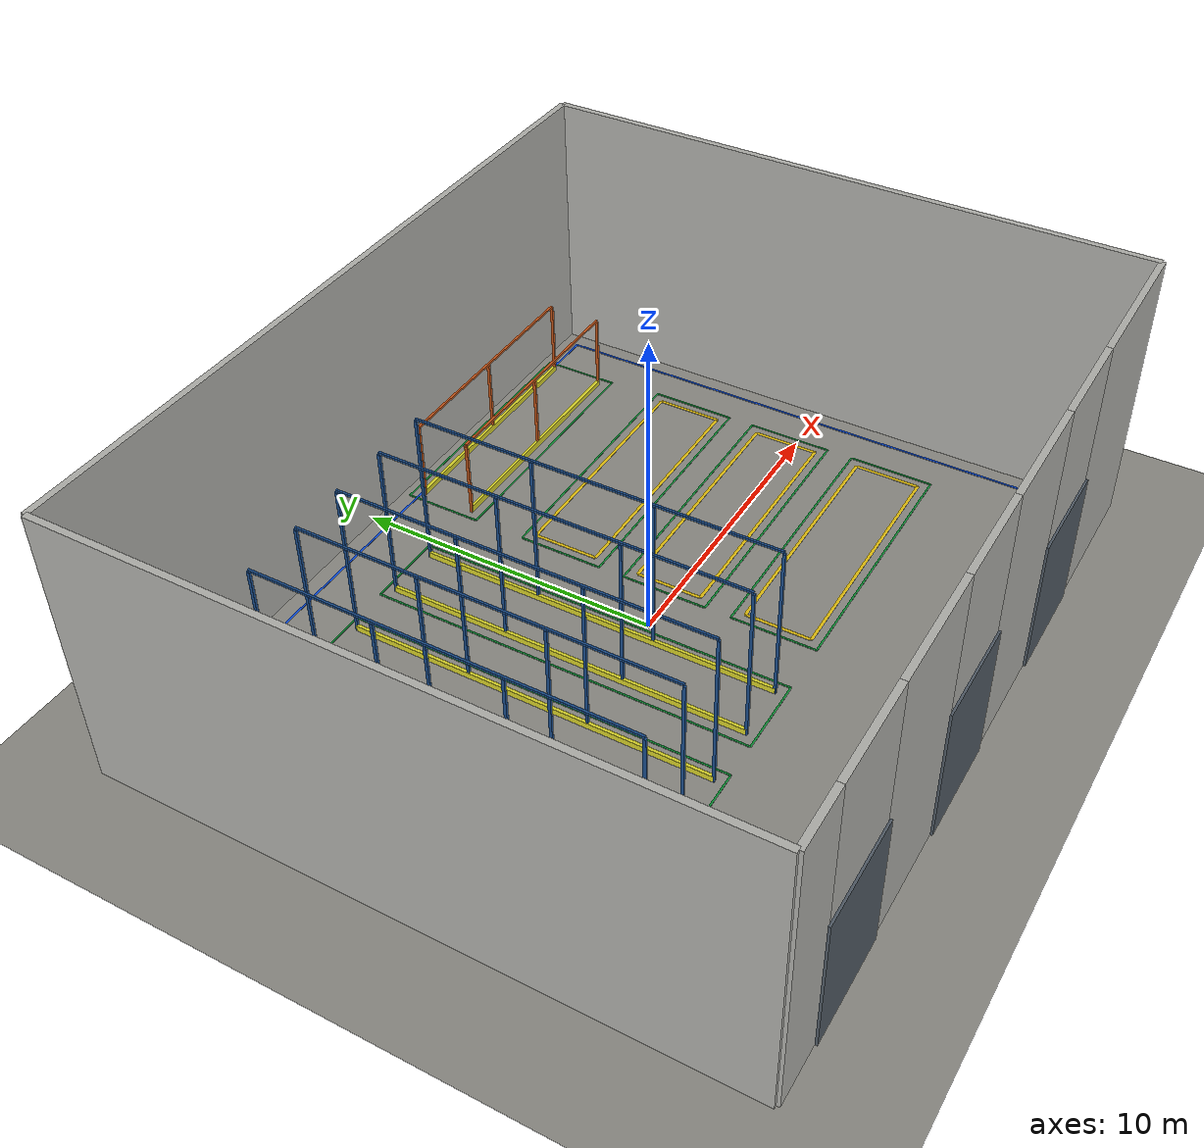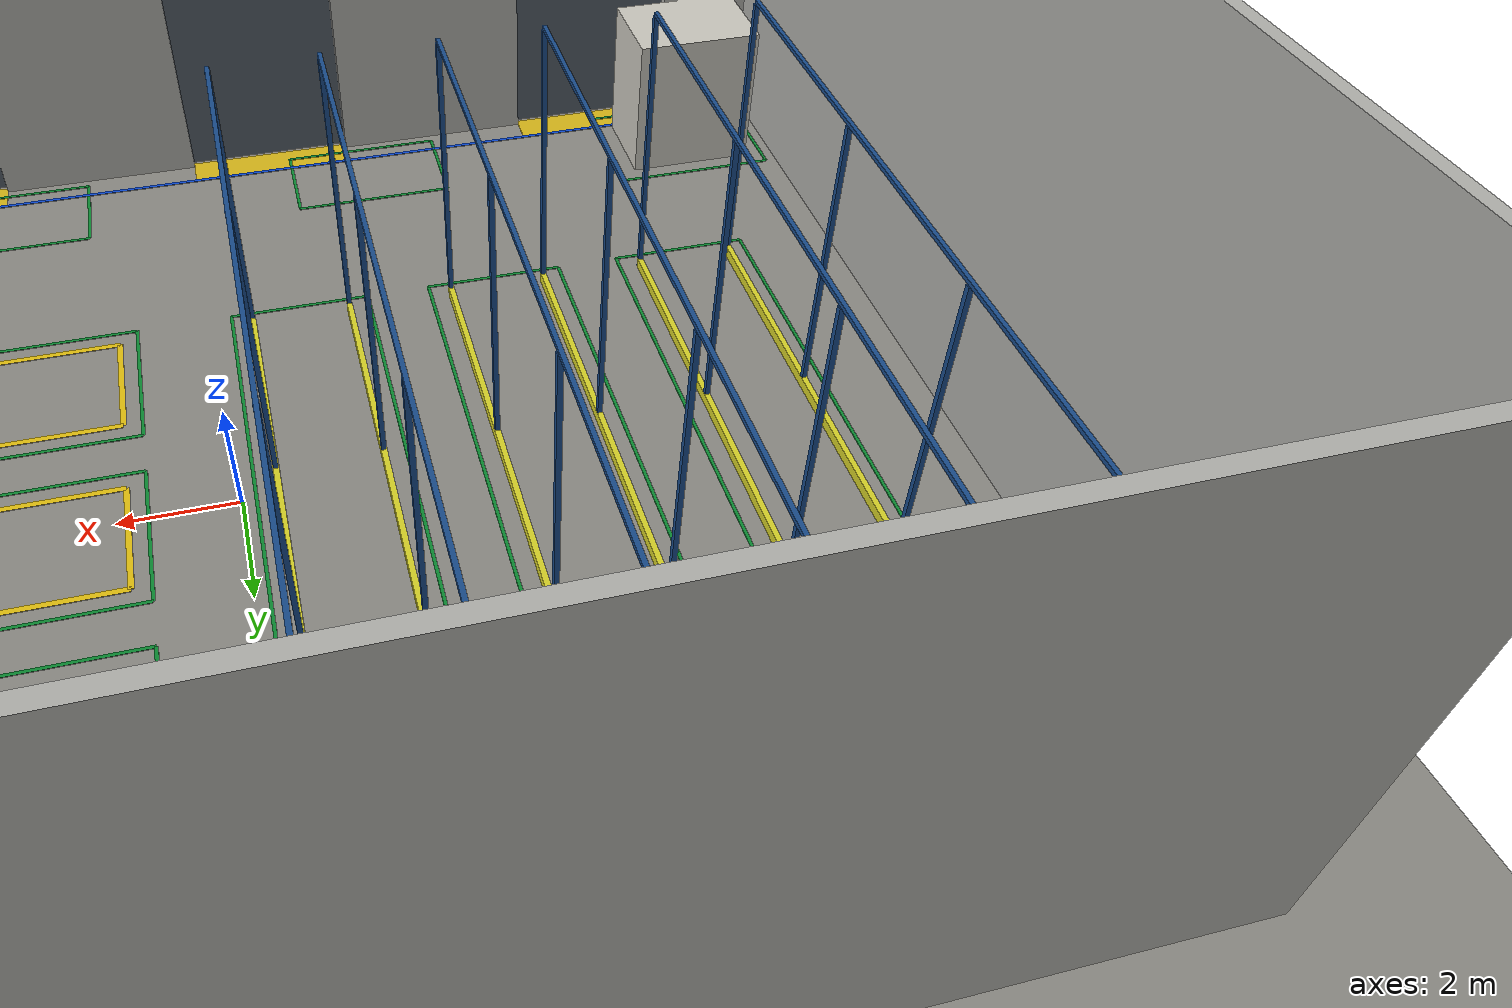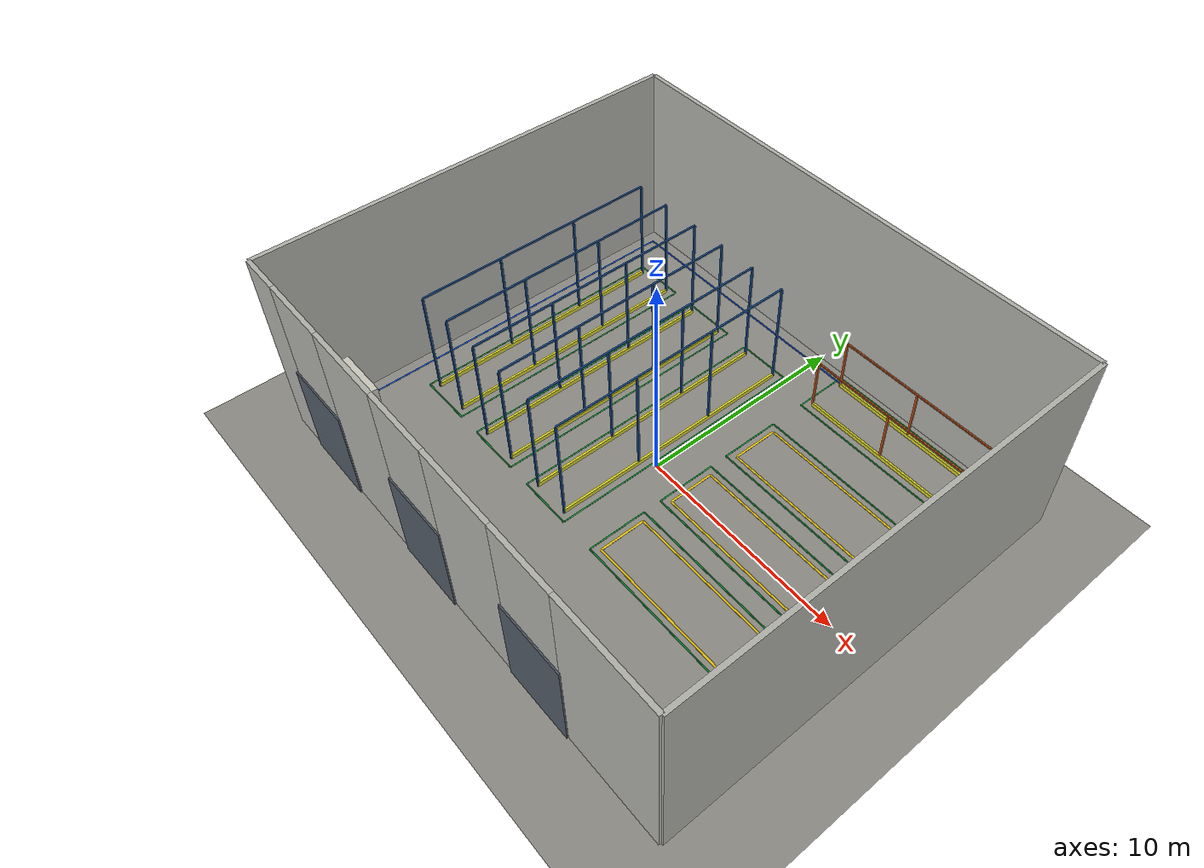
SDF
<sdf version="1.8">
 <world name="warehouse_v2">
  <physics name="default_physics" type="ode">
   <max_step_size>0.001</max_step_size>
   <real_time_factor>1.0</real_time_factor>
   <real_time_update_rate>1000</real_time_update_rate>
  </physics>
  <plugin name="gz::sim::systems::Physics" filename="gz-sim-physics-system"/>
  <plugin name="gz::sim::systems::UserCommands" filename="gz-sim-user-commands-system"/>
  <plugin name="gz::sim::systems::SceneBroadcaster" filename="gz-sim-scene-broadcaster-system"/>
  <plugin name="gz::sim::systems::Contact" filename="gz-sim-contact-system"/>
  <plugin name="gz::sim::systems::Sensors" filename="gz-sim-sensors-system">
   <render_engine>ogre2</render_engine>
  </plugin>
  <gravity>0 0 -9.81</gravity>
  <magnetic_field>6e-06 2.3e-05 -4.2e-05</magnetic_field>
  <atmosphere type="adiabatic"/>
  <scene>
   <ambient>0.42 0.42 0.44 1</ambient>
   <background>0.74 0.78 0.82 1</background>
   <shadows>true</shadows>
  </scene>
  <light type="directional" name="sun">
   <pose>0 0 12 0 0 0</pose>
   <diffuse>0.62 0.62 0.60 1</diffuse>
   <specular>0.08 0.08 0.08 1</specular>
   <direction>-0.35 0.55 -0.80</direction>
   <attenuation>
    <range>60</range>
    <constant>0.9</constant>
    <linear>0.01</linear>
    <quadratic>0.001</quadratic>
   </attenuation>
  </light>
  <light type="point" name="lamp_light_0">
   <pose>-8.90 -1.20 7.10 0 0 0</pose>
   <cast_shadows>false</cast_shadows>
   <diffuse>0.30 0.29 0.27 1</diffuse>
   <specular>0.03 0.03 0.03 1</specular>
   <attenuation>
    <range>16</range>
    <constant>1.10</constant>
    <linear>0.08</linear>
    <quadratic>0.010</quadratic>
   </attenuation>
  </light>
  <light type="point" name="lamp_light_1">
   <pose>-8.90 5.20 7.10 0 0 0</pose>
   <cast_shadows>false</cast_shadows>
   <diffuse>0.30 0.29 0.27 1</diffuse>
   <specular>0.03 0.03 0.03 1</specular>
   <attenuation>
    <range>16</range>
    <constant>1.10</constant>
    <linear>0.08</linear>
    <quadratic>0.010</quadratic>
   </attenuation>
  </light>
  <light type="point" name="lamp_light_2">
   <pose>-3.30 2.00 7.10 0 0 0</pose>
   <cast_shadows>false</cast_shadows>
   <diffuse>0.30 0.29 0.27 1</diffuse>
   <specular>0.03 0.03 0.03 1</specular>
   <attenuation>
    <range>16</range>
    <constant>1.10</constant>
    <linear>0.08</linear>
    <quadratic>0.010</quadratic>
   </attenuation>
  </light>
  <light type="point" name="lamp_light_3">
   <pose>2.90 -2.20 7.10 0 0 0</pose>
   <cast_shadows>false</cast_shadows>
   <diffuse>0.30 0.29 0.27 1</diffuse>
   <specular>0.03 0.03 0.03 1</specular>
   <attenuation>
    <range>16</range>
    <constant>1.10</constant>
    <linear>0.08</linear>
    <quadratic>0.010</quadratic>
   </attenuation>
  </light>
  <light type="point" name="lamp_light_4">
   <pose>2.90 5.60 7.10 0 0 0</pose>
   <cast_shadows>false</cast_shadows>
   <diffuse>0.30 0.29 0.27 1</diffuse>
   <specular>0.03 0.03 0.03 1</specular>
   <attenuation>
    <range>16</range>
    <constant>1.10</constant>
    <linear>0.08</linear>
    <quadratic>0.010</quadratic>
   </attenuation>
  </light>
  <light type="point" name="lamp_light_5">
   <pose>8.60 1.00 7.10 0 0 0</pose>
   <cast_shadows>false</cast_shadows>
   <diffuse>0.30 0.29 0.27 1</diffuse>
   <specular>0.03 0.03 0.03 1</specular>
   <attenuation>
    <range>16</range>
    <constant>1.10</constant>
    <linear>0.08</linear>
    <quadratic>0.010</quadratic>
   </attenuation>
  </light>
  <model name="ground_plane">
   <static>true</static>
   <link name="link">
    <collision name="collision">
     <geometry><plane><normal>0 0 1</normal><size>24.5 20.5</size></plane></geometry>
    </collision>
    <visual name="visual">
     <geometry><plane><normal>0 0 1</normal><size>24.5 20.5</size></plane></geometry>
     <material>
      <ambient>0.55 0.545 0.52 1</ambient>
      <diffuse>0.55 0.545 0.52 1</diffuse>
      <specular>0.04 0.04 0.04 1</specular>
     </material>
    </visual>
   </link>
  </model>
  <model name="warehouse_shell">
   <static>true</static>
   <link name="wall_east">
    <pose>12.000 0.000 4.500 0 0 0</pose>
    <collision name="collision"><geometry><box><size>0.200 20.000 9.000</size></box></geometry></collision>
    <sensor name="contact" type="contact">
     <contact><collision>collision</collision></contact>
     <update_rate>60</update_rate>
    </sensor>
    <visual name="visual">
     <geometry><box><size>0.200 20.000 9.000</size></box></geometry>
     <material><ambient>0.70 0.70 0.68 1</ambient><diffuse>0.70 0.70 0.68 1</diffuse></material>
    </visual>
   </link>
   <link name="wall_west">
    <pose>-12.000 0.000 4.500 0 0 0</pose>
    <collision name="collision"><geometry><box><size>0.200 20.000 9.000</size></box></geometry></collision>
    <sensor name="contact" type="contact">
     <contact><collision>collision</collision></contact>
     <update_rate>60</update_rate>
    </sensor>
    <visual name="visual">
     <geometry><box><size>0.200 20.000 9.000</size></box></geometry>
     <material><ambient>0.70 0.70 0.68 1</ambient><diffuse>0.70 0.70 0.68 1</diffuse></material>
    </visual>
   </link>
   <link name="wall_north">
    <pose>0.000 10.000 4.500 0 0 0</pose>
    <collision name="collision"><geometry><box><size>24.000 0.200 9.000</size></box></geometry></collision>
    <sensor name="contact" type="contact">
     <contact><collision>collision</collision></contact>
     <update_rate>60</update_rate>
    </sensor>
    <visual name="visual">
     <geometry><box><size>24.000 0.200 9.000</size></box></geometry>
     <material><ambient>0.70 0.70 0.68 1</ambient><diffuse>0.70 0.70 0.68 1</diffuse></material>
    </visual>
   </link>
   <link name="wall_south_0">
    <pose>-11.050 -10.000 4.500 0 0 0</pose>
    <collision name="collision"><geometry><box><size>1.900 0.200 9.000</size></box></geometry></collision>
    <sensor name="contact" type="contact">
     <contact><collision>collision</collision></contact>
     <update_rate>60</update_rate>
    </sensor>
    <visual name="visual">
     <geometry><box><size>1.900 0.200 9.000</size></box></geometry>
     <material><ambient>0.70 0.70 0.68 1</ambient><diffuse>0.70 0.70 0.68 1</diffuse></material>
    </visual>
   </link>
   <link name="wall_south_1">
    <pose>-5.000 -10.000 4.500 0 0 0</pose>
    <collision name="collision"><geometry><box><size>3.800 0.200 9.000</size></box></geometry></collision>
    <sensor name="contact" type="contact">
     <contact><collision>collision</collision></contact>
     <update_rate>60</update_rate>
    </sensor>
    <visual name="visual">
     <geometry><box><size>3.800 0.200 9.000</size></box></geometry>
     <material><ambient>0.70 0.70 0.68 1</ambient><diffuse>0.70 0.70 0.68 1</diffuse></material>
    </visual>
   </link>
   <link name="wall_south_2">
    <pose>2.000 -10.000 4.500 0 0 0</pose>
    <collision name="collision"><geometry><box><size>3.800 0.200 9.000</size></box></geometry></collision>
    <sensor name="contact" type="contact">
     <contact><collision>collision</collision></contact>
     <update_rate>60</update_rate>
    </sensor>
    <visual name="visual">
     <geometry><box><size>3.800 0.200 9.000</size></box></geometry>
     <material><ambient>0.70 0.70 0.68 1</ambient><diffuse>0.70 0.70 0.68 1</diffuse></material>
    </visual>
   </link>
   <link name="wall_south_3">
    <pose>9.550 -10.000 4.500 0 0 0</pose>
    <collision name="collision"><geometry><box><size>4.900 0.200 9.000</size></box></geometry></collision>
    <sensor name="contact" type="contact">
     <contact><collision>collision</collision></contact>
     <update_rate>60</update_rate>
    </sensor>
    <visual name="visual">
     <geometry><box><size>4.900 0.200 9.000</size></box></geometry>
     <material><ambient>0.70 0.70 0.68 1</ambient><diffuse>0.70 0.70 0.68 1</diffuse></material>
    </visual>
   </link>
   <link name="door_head_0">
    <pose>-8.500 -10.000 6.750 0 0 0</pose>
    <collision name="collision"><geometry><box><size>3.200 0.200 4.500</size></box></geometry></collision>
    <sensor name="contact" type="contact">
     <contact><collision>collision</collision></contact>
     <update_rate>60</update_rate>
    </sensor>
    <visual name="visual">
     <geometry><box><size>3.200 0.200 4.500</size></box></geometry>
     <material><ambient>0.70 0.70 0.68 1</ambient><diffuse>0.70 0.70 0.68 1</diffuse></material>
    </visual>
   </link>
   <link name="door_frame_0">
    <pose>-8.500 -10.130 2.250 0 0 0</pose>
    <visual name="visual">
     <geometry><box><size>3.360 0.080 4.500</size></box></geometry>
     <material><ambient>0.32 0.36 0.40 1</ambient><diffuse>0.32 0.36 0.40 1</diffuse></material>
    </visual>
   </link>
   <link name="door_sill_0">
    <pose>-8.500 -9.700 0.008 0 0 0</pose>
    <visual name="visual">
     <geometry><box><size>3.200 0.600 0.014</size></box></geometry>
     <material><ambient>0.85 0.72 0.10 1</ambient><diffuse>0.85 0.72 0.10 1</diffuse></material>
    </visual>
   </link>
   <link name="door_head_1">
    <pose>-1.500 -10.000 6.750 0 0 0</pose>
    <collision name="collision"><geometry><box><size>3.200 0.200 4.500</size></box></geometry></collision>
    <sensor name="contact" type="contact">
     <contact><collision>collision</collision></contact>
     <update_rate>60</update_rate>
    </sensor>
    <visual name="visual">
     <geometry><box><size>3.200 0.200 4.500</size></box></geometry>
     <material><ambient>0.70 0.70 0.68 1</ambient><diffuse>0.70 0.70 0.68 1</diffuse></material>
    </visual>
   </link>
   <link name="door_frame_1">
    <pose>-1.500 -10.130 2.250 0 0 0</pose>
    <visual name="visual">
     <geometry><box><size>3.360 0.080 4.500</size></box></geometry>
     <material><ambient>0.32 0.36 0.40 1</ambient><diffuse>0.32 0.36 0.40 1</diffuse></material>
    </visual>
   </link>
   <link name="door_sill_1">
    <pose>-1.500 -9.700 0.008 0 0 0</pose>
    <visual name="visual">
     <geometry><box><size>3.200 0.600 0.014</size></box></geometry>
     <material><ambient>0.85 0.72 0.10 1</ambient><diffuse>0.85 0.72 0.10 1</diffuse></material>
    </visual>
   </link>
   <link name="door_head_2">
    <pose>5.500 -10.000 6.750 0 0 0</pose>
    <collision name="collision"><geometry><box><size>3.200 0.200 4.500</size></box></geometry></collision>
    <sensor name="contact" type="contact">
     <contact><collision>collision</collision></contact>
     <update_rate>60</update_rate>
    </sensor>
    <visual name="visual">
     <geometry><box><size>3.200 0.200 4.500</size></box></geometry>
     <material><ambient>0.70 0.70 0.68 1</ambient><diffuse>0.70 0.70 0.68 1</diffuse></material>
    </visual>
   </link>
   <link name="door_frame_2">
    <pose>5.500 -10.130 2.250 0 0 0</pose>
    <visual name="visual">
     <geometry><box><size>3.360 0.080 4.500</size></box></geometry>
     <material><ambient>0.32 0.36 0.40 1</ambient><diffuse>0.32 0.36 0.40 1</diffuse></material>
    </visual>
   </link>
   <link name="door_sill_2">
    <pose>5.500 -9.700 0.008 0 0 0</pose>
    <visual name="visual">
     <geometry><box><size>3.200 0.600 0.014</size></box></geometry>
     <material><ambient>0.85 0.72 0.10 1</ambient><diffuse>0.85 0.72 0.10 1</diffuse></material>
    </visual>
   </link>
  </model>
  <model name="warehouse_v2_occluders">
   <static>true</static>
   <link name="obs_A1b1w">
    <pose>-9.410 -2.442 2.613 0 0 0</pose>
    <collision name="collision"><geometry><box><size>0.880 3.917 5.226</size></box></geometry></collision>
    <sensor name="contact" type="contact">
     <contact><collision>collision</collision></contact>
     <update_rate>60</update_rate>
    </sensor>
   </link>
   <link name="obs_A1b1e">
    <pose>-8.390 -2.442 2.613 0 0 0</pose>
    <collision name="collision"><geometry><box><size>0.880 3.917 5.226</size></box></geometry></collision>
    <sensor name="contact" type="contact">
     <contact><collision>collision</collision></contact>
     <update_rate>60</update_rate>
    </sensor>
   </link>
   <link name="obs_A1b2w">
    <pose>-9.410 1.475 2.613 0 0 0</pose>
    <collision name="collision"><geometry><box><size>0.880 3.917 5.226</size></box></geometry></collision>
    <sensor name="contact" type="contact">
     <contact><collision>collision</collision></contact>
     <update_rate>60</update_rate>
    </sensor>
   </link>
   <link name="obs_A1b2e">
    <pose>-8.390 1.475 2.613 0 0 0</pose>
    <collision name="collision"><geometry><box><size>0.880 3.917 5.226</size></box></geometry></collision>
    <sensor name="contact" type="contact">
     <contact><collision>collision</collision></contact>
     <update_rate>60</update_rate>
    </sensor>
   </link>
   <link name="obs_A1b3w">
    <pose>-9.410 5.393 2.613 0 0 0</pose>
    <collision name="collision"><geometry><box><size>0.880 3.917 5.226</size></box></geometry></collision>
    <sensor name="contact" type="contact">
     <contact><collision>collision</collision></contact>
     <update_rate>60</update_rate>
    </sensor>
   </link>
   <link name="obs_A1b3e">
    <pose>-8.390 5.393 2.613 0 0 0</pose>
    <collision name="collision"><geometry><box><size>0.880 3.917 5.226</size></box></geometry></collision>
    <sensor name="contact" type="contact">
     <contact><collision>collision</collision></contact>
     <update_rate>60</update_rate>
    </sensor>
   </link>
   <link name="obs_A2b1w">
    <pose>-5.710 -2.442 2.613 0 0 0</pose>
    <collision name="collision"><geometry><box><size>0.880 3.917 5.226</size></box></geometry></collision>
    <sensor name="contact" type="contact">
     <contact><collision>collision</collision></contact>
     <update_rate>60</update_rate>
    </sensor>
   </link>
   <link name="obs_A2b1e">
    <pose>-4.690 -2.442 2.613 0 0 0</pose>
    <collision name="collision"><geometry><box><size>0.880 3.917 5.226</size></box></geometry></collision>
    <sensor name="contact" type="contact">
     <contact><collision>collision</collision></contact>
     <update_rate>60</update_rate>
    </sensor>
   </link>
   <link name="obs_A2b2w">
    <pose>-5.710 1.475 1.306 0 0 0</pose>
    <collision name="collision"><geometry><box><size>0.880 3.917 2.613</size></box></geometry></collision>
    <sensor name="contact" type="contact">
     <contact><collision>collision</collision></contact>
     <update_rate>60</update_rate>
    </sensor>
   </link>
   <link name="obs_A2b2e">
    <pose>-4.690 1.475 1.306 0 0 0</pose>
    <collision name="collision"><geometry><box><size>0.880 3.917 2.613</size></box></geometry></collision>
    <sensor name="contact" type="contact">
     <contact><collision>collision</collision></contact>
     <update_rate>60</update_rate>
    </sensor>
   </link>
   <link name="obs_A2b3w">
    <pose>-5.710 5.393 2.613 0 0 0</pose>
    <collision name="collision"><geometry><box><size>0.880 3.917 5.226</size></box></geometry></collision>
    <sensor name="contact" type="contact">
     <contact><collision>collision</collision></contact>
     <update_rate>60</update_rate>
    </sensor>
   </link>
   <link name="obs_A2b3e">
    <pose>-4.690 5.393 2.613 0 0 0</pose>
    <collision name="collision"><geometry><box><size>0.880 3.917 5.226</size></box></geometry></collision>
    <sensor name="contact" type="contact">
     <contact><collision>collision</collision></contact>
     <update_rate>60</update_rate>
    </sensor>
   </link>
   <link name="obs_A3b1w">
    <pose>-2.010 -2.442 2.613 0 0 0</pose>
    <collision name="collision"><geometry><box><size>0.880 3.917 5.226</size></box></geometry></collision>
    <sensor name="contact" type="contact">
     <contact><collision>collision</collision></contact>
     <update_rate>60</update_rate>
    </sensor>
   </link>
   <link name="obs_A3b1e">
    <pose>-0.990 -2.442 2.613 0 0 0</pose>
    <collision name="collision"><geometry><box><size>0.880 3.917 5.226</size></box></geometry></collision>
    <sensor name="contact" type="contact">
     <contact><collision>collision</collision></contact>
     <update_rate>60</update_rate>
    </sensor>
   </link>
   <link name="obs_A3b2w">
    <pose>-2.010 1.475 2.613 0 0 0</pose>
    <collision name="collision"><geometry><box><size>0.880 3.917 5.226</size></box></geometry></collision>
    <sensor name="contact" type="contact">
     <contact><collision>collision</collision></contact>
     <update_rate>60</update_rate>
    </sensor>
   </link>
   <link name="obs_A3b2e">
    <pose>-0.990 1.475 2.613 0 0 0</pose>
    <collision name="collision"><geometry><box><size>0.880 3.917 5.226</size></box></geometry></collision>
    <sensor name="contact" type="contact">
     <contact><collision>collision</collision></contact>
     <update_rate>60</update_rate>
    </sensor>
   </link>
   <link name="obs_A3b3w">
    <pose>-2.010 5.393 1.306 0 0 0</pose>
    <collision name="collision"><geometry><box><size>0.880 3.917 2.613</size></box></geometry></collision>
    <sensor name="contact" type="contact">
     <contact><collision>collision</collision></contact>
     <update_rate>60</update_rate>
    </sensor>
   </link>
   <link name="obs_A3b3e">
    <pose>-0.990 5.393 1.306 0 0 0</pose>
    <collision name="collision"><geometry><box><size>0.880 3.917 2.613</size></box></geometry></collision>
    <sensor name="contact" type="contact">
     <contact><collision>collision</collision></contact>
     <update_rate>60</update_rate>
    </sensor>
   </link>
   <link name="obs_B1b1s">
    <pose>3.758 7.840 1.306 0 0 0</pose>
    <collision name="collision"><geometry><box><size>3.917 0.880 2.613</size></box></geometry></collision>
    <sensor name="contact" type="contact">
     <contact><collision>collision</collision></contact>
     <update_rate>60</update_rate>
    </sensor>
   </link>
   <link name="obs_B1b1n">
    <pose>3.758 8.860 1.306 0 0 0</pose>
    <collision name="collision"><geometry><box><size>3.917 0.880 2.613</size></box></geometry></collision>
    <sensor name="contact" type="contact">
     <contact><collision>collision</collision></contact>
     <update_rate>60</update_rate>
    </sensor>
   </link>
   <link name="obs_B1b2s">
    <pose>7.675 7.840 1.306 0 0 0</pose>
    <collision name="collision"><geometry><box><size>3.917 0.880 2.613</size></box></geometry></collision>
    <sensor name="contact" type="contact">
     <contact><collision>collision</collision></contact>
     <update_rate>60</update_rate>
    </sensor>
   </link>
   <link name="obs_B1b2n">
    <pose>7.675 8.860 1.306 0 0 0</pose>
    <collision name="collision"><geometry><box><size>3.917 0.880 2.613</size></box></geometry></collision>
    <sensor name="contact" type="contact">
     <contact><collision>collision</collision></contact>
     <update_rate>60</update_rate>
    </sensor>
   </link>
   <link name="obs_Cs_p0">
    <pose>3.182 -3.325 0.529 0 0 0</pose>
    <collision name="collision"><geometry><box><size>2.146 1.983 1.058</size></box></geometry></collision>
    <sensor name="contact" type="contact">
     <contact><collision>collision</collision></contact>
     <update_rate>60</update_rate>
    </sensor>
   </link>
   <link name="obs_Cs_p1">
    <pose>5.825 -3.325 1.058 0 0 0</pose>
    <collision name="collision"><geometry><box><size>2.146 1.983 2.115</size></box></geometry></collision>
    <sensor name="contact" type="contact">
     <contact><collision>collision</collision></contact>
     <update_rate>60</update_rate>
    </sensor>
   </link>
   <link name="obs_Cs_p2">
    <pose>8.468 -3.325 1.587 0 0 0</pose>
    <collision name="collision"><geometry><box><size>2.146 1.983 3.173</size></box></geometry></collision>
    <sensor name="contact" type="contact">
     <contact><collision>collision</collision></contact>
     <update_rate>60</update_rate>
    </sensor>
   </link>
   <link name="obs_Cm_p0">
    <pose>3.182 0.325 1.058 0 0 0</pose>
    <collision name="collision"><geometry><box><size>2.146 1.983 2.115</size></box></geometry></collision>
    <sensor name="contact" type="contact">
     <contact><collision>collision</collision></contact>
     <update_rate>60</update_rate>
    </sensor>
   </link>
   <link name="obs_Cm_p1">
    <pose>5.825 0.325 1.587 0 0 0</pose>
    <collision name="collision"><geometry><box><size>2.146 1.983 3.173</size></box></geometry></collision>
    <sensor name="contact" type="contact">
     <contact><collision>collision</collision></contact>
     <update_rate>60</update_rate>
    </sensor>
   </link>
   <link name="obs_Cm_p2">
    <pose>8.468 0.325 0.529 0 0 0</pose>
    <collision name="collision"><geometry><box><size>2.146 1.983 1.058</size></box></geometry></collision>
    <sensor name="contact" type="contact">
     <contact><collision>collision</collision></contact>
     <update_rate>60</update_rate>
    </sensor>
   </link>
   <link name="obs_Cn_p0">
    <pose>3.182 3.975 1.587 0 0 0</pose>
    <collision name="collision"><geometry><box><size>2.146 1.983 3.173</size></box></geometry></collision>
    <sensor name="contact" type="contact">
     <contact><collision>collision</collision></contact>
     <update_rate>60</update_rate>
    </sensor>
   </link>
   <link name="obs_Cn_p1">
    <pose>5.825 3.975 0.529 0 0 0</pose>
    <collision name="collision"><geometry><box><size>2.146 1.983 1.058</size></box></geometry></collision>
    <sensor name="contact" type="contact">
     <contact><collision>collision</collision></contact>
     <update_rate>60</update_rate>
    </sensor>
   </link>
   <link name="obs_Cn_p2">
    <pose>8.468 3.975 1.058 0 0 0</pose>
    <collision name="collision"><geometry><box><size>2.146 1.983 2.115</size></box></geometry></collision>
    <sensor name="contact" type="contact">
     <contact><collision>collision</collision></contact>
     <update_rate>60</update_rate>
    </sensor>
   </link>
   <link name="dock_office">
    <pose>-10.100 -8.450 1.400 0 0 0</pose>
    <collision name="collision"><geometry><box><size>2.440 1.740 2.800</size></box></geometry></collision>
    <sensor name="contact" type="contact">
     <contact><collision>collision</collision></contact>
     <update_rate>60</update_rate>
    </sensor>
    <visual name="visual">
     <geometry><box><size>2.440 1.740 2.800</size></box></geometry>
     <material><ambient>0.80 0.79 0.75 1</ambient><diffuse>0.80 0.79 0.75 1</diffuse></material>
    </visual>
   </link>
   <link name="obs_STAGE_MID0">
    <pose>-3.900 -8.750 0.860 0 0 0</pose>
    <collision name="collision"><geometry><box><size>0.950 1.000 1.720</size></box></geometry></collision>
    <sensor name="contact" type="contact">
     <contact><collision>collision</collision></contact>
     <update_rate>60</update_rate>
    </sensor>
   </link>
   <link name="obs_STAGE_MID1">
    <pose>-2.850 -8.750 0.860 0 0 0</pose>
    <collision name="collision"><geometry><box><size>0.950 1.000 1.720</size></box></geometry></collision>
    <sensor name="contact" type="contact">
     <contact><collision>collision</collision></contact>
     <update_rate>60</update_rate>
    </sensor>
   </link>
   <link name="obs_STAGE_E0">
    <pose>3.300 -8.750 0.530 0 0 0</pose>
    <collision name="collision"><geometry><box><size>0.950 1.000 1.060</size></box></geometry></collision>
    <sensor name="contact" type="contact">
     <contact><collision>collision</collision></contact>
     <update_rate>60</update_rate>
    </sensor>
   </link>
   <link name="obs_STAGE_E1">
    <pose>4.350 -8.750 0.530 0 0 0</pose>
    <collision name="collision"><geometry><box><size>0.950 1.000 1.060</size></box></geometry></collision>
    <sensor name="contact" type="contact">
     <contact><collision>collision</collision></contact>
     <update_rate>60</update_rate>
    </sensor>
   </link>
  </model>
  <model name="warehouse_v2_rack_frames">
   <static>true</static>
   <link name="post_A1_0n">
    <pose>-9.790 -4.400 2.613 0 0 0</pose>
    <visual name="visual">
     <geometry><box><size>0.085 0.085 5.226</size></box></geometry>
     <material><ambient>0.10 0.30 0.55 1</ambient><diffuse>0.10 0.30 0.55 1</diffuse></material>
    </visual>
   </link>
   <link name="post_A1_0s">
    <pose>-8.010 -4.400 2.613 0 0 0</pose>
    <visual name="visual">
     <geometry><box><size>0.085 0.085 5.226</size></box></geometry>
     <material><ambient>0.10 0.30 0.55 1</ambient><diffuse>0.10 0.30 0.55 1</diffuse></material>
    </visual>
   </link>
   <link name="post_A1_1n">
    <pose>-9.790 -0.483 2.613 0 0 0</pose>
    <visual name="visual">
     <geometry><box><size>0.085 0.085 5.226</size></box></geometry>
     <material><ambient>0.10 0.30 0.55 1</ambient><diffuse>0.10 0.30 0.55 1</diffuse></material>
    </visual>
   </link>
   <link name="post_A1_1s">
    <pose>-8.010 -0.483 2.613 0 0 0</pose>
    <visual name="visual">
     <geometry><box><size>0.085 0.085 5.226</size></box></geometry>
     <material><ambient>0.10 0.30 0.55 1</ambient><diffuse>0.10 0.30 0.55 1</diffuse></material>
    </visual>
   </link>
   <link name="post_A1_2n">
    <pose>-9.790 3.434 2.613 0 0 0</pose>
    <visual name="visual">
     <geometry><box><size>0.085 0.085 5.226</size></box></geometry>
     <material><ambient>0.10 0.30 0.55 1</ambient><diffuse>0.10 0.30 0.55 1</diffuse></material>
    </visual>
   </link>
   <link name="post_A1_2s">
    <pose>-8.010 3.434 2.613 0 0 0</pose>
    <visual name="visual">
     <geometry><box><size>0.085 0.085 5.226</size></box></geometry>
     <material><ambient>0.10 0.30 0.55 1</ambient><diffuse>0.10 0.30 0.55 1</diffuse></material>
    </visual>
   </link>
   <link name="post_A1_3n">
    <pose>-9.790 7.351 2.613 0 0 0</pose>
    <visual name="visual">
     <geometry><box><size>0.085 0.085 5.226</size></box></geometry>
     <material><ambient>0.10 0.30 0.55 1</ambient><diffuse>0.10 0.30 0.55 1</diffuse></material>
    </visual>
   </link>
   <link name="post_A1_3s">
    <pose>-8.010 7.351 2.613 0 0 0</pose>
    <visual name="visual">
     <geometry><box><size>0.085 0.085 5.226</size></box></geometry>
     <material><ambient>0.10 0.30 0.55 1</ambient><diffuse>0.10 0.30 0.55 1</diffuse></material>
    </visual>
   </link>
   <link name="rail_A1_n">
    <pose>-9.790 1.475 5.276 0 0 0</pose>
    <visual name="visual">
     <geometry><box><size>0.070 11.751 0.070</size></box></geometry>
     <material><ambient>0.10 0.30 0.55 1</ambient><diffuse>0.10 0.30 0.55 1</diffuse></material>
    </visual>
   </link>
   <link name="rail_A1_s">
    <pose>-8.010 1.475 5.276 0 0 0</pose>
    <visual name="visual">
     <geometry><box><size>0.070 11.751 0.070</size></box></geometry>
     <material><ambient>0.10 0.30 0.55 1</ambient><diffuse>0.10 0.30 0.55 1</diffuse></material>
    </visual>
   </link>
   <link name="kick_A1_n">
    <pose>-9.790 1.475 0.100 0 0 0</pose>
    <visual name="visual">
     <geometry><box><size>0.100 11.751 0.200</size></box></geometry>
     <material><ambient>0.85 0.83 0.16 1</ambient><diffuse>0.85 0.83 0.16 1</diffuse></material>
    </visual>
   </link>
   <link name="kick_A1_s">
    <pose>-8.010 1.475 0.100 0 0 0</pose>
    <visual name="visual">
     <geometry><box><size>0.100 11.751 0.200</size></box></geometry>
     <material><ambient>0.85 0.83 0.16 1</ambient><diffuse>0.85 0.83 0.16 1</diffuse></material>
    </visual>
   </link>
   <link name="post_A2_0n">
    <pose>-6.090 -4.400 2.613 0 0 0</pose>
    <visual name="visual">
     <geometry><box><size>0.085 0.085 5.226</size></box></geometry>
     <material><ambient>0.10 0.30 0.55 1</ambient><diffuse>0.10 0.30 0.55 1</diffuse></material>
    </visual>
   </link>
   <link name="post_A2_0s">
    <pose>-4.310 -4.400 2.613 0 0 0</pose>
    <visual name="visual">
     <geometry><box><size>0.085 0.085 5.226</size></box></geometry>
     <material><ambient>0.10 0.30 0.55 1</ambient><diffuse>0.10 0.30 0.55 1</diffuse></material>
    </visual>
   </link>
   <link name="post_A2_1n">
    <pose>-6.090 -0.483 2.613 0 0 0</pose>
    <visual name="visual">
     <geometry><box><size>0.085 0.085 5.226</size></box></geometry>
     <material><ambient>0.10 0.30 0.55 1</ambient><diffuse>0.10 0.30 0.55 1</diffuse></material>
    </visual>
   </link>
   <link name="post_A2_1s">
    <pose>-4.310 -0.483 2.613 0 0 0</pose>
    <visual name="visual">
     <geometry><box><size>0.085 0.085 5.226</size></box></geometry>
     <material><ambient>0.10 0.30 0.55 1</ambient><diffuse>0.10 0.30 0.55 1</diffuse></material>
    </visual>
   </link>
   <link name="post_A2_2n">
    <pose>-6.090 3.434 2.613 0 0 0</pose>
    <visual name="visual">
     <geometry><box><size>0.085 0.085 5.226</size></box></geometry>
     <material><ambient>0.10 0.30 0.55 1</ambient><diffuse>0.10 0.30 0.55 1</diffuse></material>
    </visual>
   </link>
   <link name="post_A2_2s">
    <pose>-4.310 3.434 2.613 0 0 0</pose>
    <visual name="visual">
     <geometry><box><size>0.085 0.085 5.226</size></box></geometry>
     <material><ambient>0.10 0.30 0.55 1</ambient><diffuse>0.10 0.30 0.55 1</diffuse></material>
    </visual>
   </link>
   <link name="post_A2_3n">
    <pose>-6.090 7.351 2.613 0 0 0</pose>
    <visual name="visual">
     <geometry><box><size>0.085 0.085 5.226</size></box></geometry>
     <material><ambient>0.10 0.30 0.55 1</ambient><diffuse>0.10 0.30 0.55 1</diffuse></material>
    </visual>
   </link>
   <link name="post_A2_3s">
    <pose>-4.310 7.351 2.613 0 0 0</pose>
    <visual name="visual">
     <geometry><box><size>0.085 0.085 5.226</size></box></geometry>
     <material><ambient>0.10 0.30 0.55 1</ambient><diffuse>0.10 0.30 0.55 1</diffuse></material>
    </visual>
   </link>
   <link name="rail_A2_n">
    <pose>-6.090 1.475 5.276 0 0 0</pose>
    <visual name="visual">
     <geometry><box><size>0.070 11.751 0.070</size></box></geometry>
     <material><ambient>0.10 0.30 0.55 1</ambient><diffuse>0.10 0.30 0.55 1</diffuse></material>
    </visual>
   </link>
   <link name="rail_A2_s">
    <pose>-4.310 1.475 5.276 0 0 0</pose>
    <visual name="visual">
     <geometry><box><size>0.070 11.751 0.070</size></box></geometry>
     <material><ambient>0.10 0.30 0.55 1</ambient><diffuse>0.10 0.30 0.55 1</diffuse></material>
    </visual>
   </link>
   <link name="kick_A2_n">
    <pose>-6.090 1.475 0.100 0 0 0</pose>
    <visual name="visual">
     <geometry><box><size>0.100 11.751 0.200</size></box></geometry>
     <material><ambient>0.85 0.83 0.16 1</ambient><diffuse>0.85 0.83 0.16 1</diffuse></material>
    </visual>
   </link>
   <link name="kick_A2_s">
    <pose>-4.310 1.475 0.100 0 0 0</pose>
    <visual name="visual">
     <geometry><box><size>0.100 11.751 0.200</size></box></geometry>
     <material><ambient>0.85 0.83 0.16 1</ambient><diffuse>0.85 0.83 0.16 1</diffuse></material>
    </visual>
   </link>
   <link name="post_A3_0n">
    <pose>-2.390 -4.400 2.613 0 0 0</pose>
    <visual name="visual">
     <geometry><box><size>0.085 0.085 5.226</size></box></geometry>
     <material><ambient>0.10 0.30 0.55 1</ambient><diffuse>0.10 0.30 0.55 1</diffuse></material>
    </visual>
   </link>
   <link name="post_A3_0s">
    <pose>-0.610 -4.400 2.613 0 0 0</pose>
    <visual name="visual">
     <geometry><box><size>0.085 0.085 5.226</size></box></geometry>
     <material><ambient>0.10 0.30 0.55 1</ambient><diffuse>0.10 0.30 0.55 1</diffuse></material>
    </visual>
   </link>
   <link name="post_A3_1n">
    <pose>-2.390 -0.483 2.613 0 0 0</pose>
    <visual name="visual">
     <geometry><box><size>0.085 0.085 5.226</size></box></geometry>
     <material><ambient>0.10 0.30 0.55 1</ambient><diffuse>0.10 0.30 0.55 1</diffuse></material>
    </visual>
   </link>
   <link name="post_A3_1s">
    <pose>-0.610 -0.483 2.613 0 0 0</pose>
    <visual name="visual">
     <geometry><box><size>0.085 0.085 5.226</size></box></geometry>
     <material><ambient>0.10 0.30 0.55 1</ambient><diffuse>0.10 0.30 0.55 1</diffuse></material>
    </visual>
   </link>
   <link name="post_A3_2n">
    <pose>-2.390 3.434 2.613 0 0 0</pose>
    <visual name="visual">
     <geometry><box><size>0.085 0.085 5.226</size></box></geometry>
     <material><ambient>0.10 0.30 0.55 1</ambient><diffuse>0.10 0.30 0.55 1</diffuse></material>
    </visual>
   </link>
   <link name="post_A3_2s">
    <pose>-0.610 3.434 2.613 0 0 0</pose>
    <visual name="visual">
     <geometry><box><size>0.085 0.085 5.226</size></box></geometry>
     <material><ambient>0.10 0.30 0.55 1</ambient><diffuse>0.10 0.30 0.55 1</diffuse></material>
    </visual>
   </link>
   <link name="post_A3_3n">
    <pose>-2.390 7.351 2.613 0 0 0</pose>
    <visual name="visual">
     <geometry><box><size>0.085 0.085 5.226</size></box></geometry>
     <material><ambient>0.10 0.30 0.55 1</ambient><diffuse>0.10 0.30 0.55 1</diffuse></material>
    </visual>
   </link>
   <link name="post_A3_3s">
    <pose>-0.610 7.351 2.613 0 0 0</pose>
    <visual name="visual">
     <geometry><box><size>0.085 0.085 5.226</size></box></geometry>
     <material><ambient>0.10 0.30 0.55 1</ambient><diffuse>0.10 0.30 0.55 1</diffuse></material>
    </visual>
   </link>
   <link name="rail_A3_n">
    <pose>-2.390 1.475 5.276 0 0 0</pose>
    <visual name="visual">
     <geometry><box><size>0.070 11.751 0.070</size></box></geometry>
     <material><ambient>0.10 0.30 0.55 1</ambient><diffuse>0.10 0.30 0.55 1</diffuse></material>
    </visual>
   </link>
   <link name="rail_A3_s">
    <pose>-0.610 1.475 5.276 0 0 0</pose>
    <visual name="visual">
     <geometry><box><size>0.070 11.751 0.070</size></box></geometry>
     <material><ambient>0.10 0.30 0.55 1</ambient><diffuse>0.10 0.30 0.55 1</diffuse></material>
    </visual>
   </link>
   <link name="kick_A3_n">
    <pose>-2.390 1.475 0.100 0 0 0</pose>
    <visual name="visual">
     <geometry><box><size>0.100 11.751 0.200</size></box></geometry>
     <material><ambient>0.85 0.83 0.16 1</ambient><diffuse>0.85 0.83 0.16 1</diffuse></material>
    </visual>
   </link>
   <link name="kick_A3_s">
    <pose>-0.610 1.475 0.100 0 0 0</pose>
    <visual name="visual">
     <geometry><box><size>0.100 11.751 0.200</size></box></geometry>
     <material><ambient>0.85 0.83 0.16 1</ambient><diffuse>0.85 0.83 0.16 1</diffuse></material>
    </visual>
   </link>
   <link name="post_B1_0n">
    <pose>1.800 7.460 1.306 0 0 0</pose>
    <visual name="visual">
     <geometry><box><size>0.085 0.085 2.613</size></box></geometry>
     <material><ambient>0.78 0.34 0.10 1</ambient><diffuse>0.78 0.34 0.10 1</diffuse></material>
    </visual>
   </link>
   <link name="post_B1_0s">
    <pose>1.800 9.240 1.306 0 0 0</pose>
    <visual name="visual">
     <geometry><box><size>0.085 0.085 2.613</size></box></geometry>
     <material><ambient>0.78 0.34 0.10 1</ambient><diffuse>0.78 0.34 0.10 1</diffuse></material>
    </visual>
   </link>
   <link name="post_B1_1n">
    <pose>5.717 7.460 1.306 0 0 0</pose>
    <visual name="visual">
     <geometry><box><size>0.085 0.085 2.613</size></box></geometry>
     <material><ambient>0.78 0.34 0.10 1</ambient><diffuse>0.78 0.34 0.10 1</diffuse></material>
    </visual>
   </link>
   <link name="post_B1_1s">
    <pose>5.717 9.240 1.306 0 0 0</pose>
    <visual name="visual">
     <geometry><box><size>0.085 0.085 2.613</size></box></geometry>
     <material><ambient>0.78 0.34 0.10 1</ambient><diffuse>0.78 0.34 0.10 1</diffuse></material>
    </visual>
   </link>
   <link name="post_B1_2n">
    <pose>9.634 7.460 1.306 0 0 0</pose>
    <visual name="visual">
     <geometry><box><size>0.085 0.085 2.613</size></box></geometry>
     <material><ambient>0.78 0.34 0.10 1</ambient><diffuse>0.78 0.34 0.10 1</diffuse></material>
    </visual>
   </link>
   <link name="post_B1_2s">
    <pose>9.634 9.240 1.306 0 0 0</pose>
    <visual name="visual">
     <geometry><box><size>0.085 0.085 2.613</size></box></geometry>
     <material><ambient>0.78 0.34 0.10 1</ambient><diffuse>0.78 0.34 0.10 1</diffuse></material>
    </visual>
   </link>
   <link name="rail_B1_n">
    <pose>5.717 7.460 2.663 0 0 0</pose>
    <visual name="visual">
     <geometry><box><size>7.834 0.070 0.070</size></box></geometry>
     <material><ambient>0.78 0.34 0.10 1</ambient><diffuse>0.78 0.34 0.10 1</diffuse></material>
    </visual>
   </link>
   <link name="rail_B1_s">
    <pose>5.717 9.240 2.663 0 0 0</pose>
    <visual name="visual">
     <geometry><box><size>7.834 0.070 0.070</size></box></geometry>
     <material><ambient>0.78 0.34 0.10 1</ambient><diffuse>0.78 0.34 0.10 1</diffuse></material>
    </visual>
   </link>
   <link name="kick_B1_n">
    <pose>5.717 7.460 0.100 0 0 0</pose>
    <visual name="visual">
     <geometry><box><size>7.834 0.100 0.200</size></box></geometry>
     <material><ambient>0.85 0.83 0.16 1</ambient><diffuse>0.85 0.83 0.16 1</diffuse></material>
    </visual>
   </link>
   <link name="kick_B1_s">
    <pose>5.717 9.240 0.100 0 0 0</pose>
    <visual name="visual">
     <geometry><box><size>7.834 0.100 0.200</size></box></geometry>
     <material><ambient>0.85 0.83 0.16 1</ambient><diffuse>0.85 0.83 0.16 1</diffuse></material>
    </visual>
   </link>
   <link name="bay_Cs_s">
    <pose>5.825 -4.400 0.020 0 0 0</pose>
    <visual name="visual">
     <geometry><box><size>8.050 0.100 0.012</size></box></geometry>
     <material><ambient>0.90 0.76 0.06 1</ambient><diffuse>0.90 0.76 0.06 1</diffuse></material>
    </visual>
   </link>
   <link name="bay_Cs_n">
    <pose>5.825 -2.250 0.020 0 0 0</pose>
    <visual name="visual">
     <geometry><box><size>8.050 0.100 0.012</size></box></geometry>
     <material><ambient>0.90 0.76 0.06 1</ambient><diffuse>0.90 0.76 0.06 1</diffuse></material>
    </visual>
   </link>
   <link name="bay_Cs_w">
    <pose>1.800 -3.325 0.020 0 0 0</pose>
    <visual name="visual">
     <geometry><box><size>0.100 2.150 0.012</size></box></geometry>
     <material><ambient>0.90 0.76 0.06 1</ambient><diffuse>0.90 0.76 0.06 1</diffuse></material>
    </visual>
   </link>
   <link name="bay_Cs_e">
    <pose>9.850 -3.325 0.020 0 0 0</pose>
    <visual name="visual">
     <geometry><box><size>0.100 2.150 0.012</size></box></geometry>
     <material><ambient>0.90 0.76 0.06 1</ambient><diffuse>0.90 0.76 0.06 1</diffuse></material>
    </visual>
   </link>
   <link name="bay_Cm_s">
    <pose>5.825 -0.750 0.020 0 0 0</pose>
    <visual name="visual">
     <geometry><box><size>8.050 0.100 0.012</size></box></geometry>
     <material><ambient>0.90 0.76 0.06 1</ambient><diffuse>0.90 0.76 0.06 1</diffuse></material>
    </visual>
   </link>
   <link name="bay_Cm_n">
    <pose>5.825 1.400 0.020 0 0 0</pose>
    <visual name="visual">
     <geometry><box><size>8.050 0.100 0.012</size></box></geometry>
     <material><ambient>0.90 0.76 0.06 1</ambient><diffuse>0.90 0.76 0.06 1</diffuse></material>
    </visual>
   </link>
   <link name="bay_Cm_w">
    <pose>1.800 0.325 0.020 0 0 0</pose>
    <visual name="visual">
     <geometry><box><size>0.100 2.150 0.012</size></box></geometry>
     <material><ambient>0.90 0.76 0.06 1</ambient><diffuse>0.90 0.76 0.06 1</diffuse></material>
    </visual>
   </link>
   <link name="bay_Cm_e">
    <pose>9.850 0.325 0.020 0 0 0</pose>
    <visual name="visual">
     <geometry><box><size>0.100 2.150 0.012</size></box></geometry>
     <material><ambient>0.90 0.76 0.06 1</ambient><diffuse>0.90 0.76 0.06 1</diffuse></material>
    </visual>
   </link>
   <link name="bay_Cn_s">
    <pose>5.825 2.900 0.020 0 0 0</pose>
    <visual name="visual">
     <geometry><box><size>8.050 0.100 0.012</size></box></geometry>
     <material><ambient>0.90 0.76 0.06 1</ambient><diffuse>0.90 0.76 0.06 1</diffuse></material>
    </visual>
   </link>
   <link name="bay_Cn_n">
    <pose>5.825 5.050 0.020 0 0 0</pose>
    <visual name="visual">
     <geometry><box><size>8.050 0.100 0.012</size></box></geometry>
     <material><ambient>0.90 0.76 0.06 1</ambient><diffuse>0.90 0.76 0.06 1</diffuse></material>
    </visual>
   </link>
   <link name="bay_Cn_w">
    <pose>1.800 3.975 0.020 0 0 0</pose>
    <visual name="visual">
     <geometry><box><size>0.100 2.150 0.012</size></box></geometry>
     <material><ambient>0.90 0.76 0.06 1</ambient><diffuse>0.90 0.76 0.06 1</diffuse></material>
    </visual>
   </link>
   <link name="bay_Cn_e">
    <pose>9.850 3.975 0.020 0 0 0</pose>
    <visual name="visual">
     <geometry><box><size>0.100 2.150 0.012</size></box></geometry>
     <material><ambient>0.90 0.76 0.06 1</ambient><diffuse>0.90 0.76 0.06 1</diffuse></material>
    </visual>
   </link>
  </model>
  <model name="known_driveable_boundary">
   <static>true</static>
   <link name="site_s">
    <pose>0.000 -9.350 0.020 0 0 0</pose>
    <visual name="visual">
     <geometry><box><size>22.700 0.070 0.012</size></box></geometry>
     <material><ambient>0.05 0.30 0.85 1</ambient><diffuse>0.05 0.30 0.85 1</diffuse></material>
    </visual>
   </link>
   <link name="site_n">
    <pose>0.000 9.350 0.020 0 0 0</pose>
    <visual name="visual">
     <geometry><box><size>22.700 0.070 0.012</size></box></geometry>
     <material><ambient>0.05 0.30 0.85 1</ambient><diffuse>0.05 0.30 0.85 1</diffuse></material>
    </visual>
   </link>
   <link name="site_w">
    <pose>-11.350 0.000 0.020 0 0 0</pose>
    <visual name="visual">
     <geometry><box><size>0.070 18.700 0.012</size></box></geometry>
     <material><ambient>0.05 0.30 0.85 1</ambient><diffuse>0.05 0.30 0.85 1</diffuse></material>
    </visual>
   </link>
   <link name="site_e">
    <pose>11.350 0.000 0.020 0 0 0</pose>
    <visual name="visual">
     <geometry><box><size>0.070 18.700 0.012</size></box></geometry>
     <material><ambient>0.05 0.30 0.85 1</ambient><diffuse>0.05 0.30 0.85 1</diffuse></material>
    </visual>
   </link>
   <link name="nogo_A1_s">
    <pose>-8.900 -4.720 0.020 0 0 0</pose>
    <visual name="visual">
     <geometry><box><size>2.540 0.060 0.012</size></box></geometry>
     <material><ambient>0.05 0.55 0.20 1</ambient><diffuse>0.05 0.55 0.20 1</diffuse></material>
    </visual>
   </link>
   <link name="nogo_A1_n">
    <pose>-8.900 7.671 0.020 0 0 0</pose>
    <visual name="visual">
     <geometry><box><size>2.540 0.060 0.012</size></box></geometry>
     <material><ambient>0.05 0.55 0.20 1</ambient><diffuse>0.05 0.55 0.20 1</diffuse></material>
    </visual>
   </link>
   <link name="nogo_A1_w">
    <pose>-10.170 1.475 0.020 0 0 0</pose>
    <visual name="visual">
     <geometry><box><size>0.060 12.391 0.012</size></box></geometry>
     <material><ambient>0.05 0.55 0.20 1</ambient><diffuse>0.05 0.55 0.20 1</diffuse></material>
    </visual>
   </link>
   <link name="nogo_A1_e">
    <pose>-7.630 1.475 0.020 0 0 0</pose>
    <visual name="visual">
     <geometry><box><size>0.060 12.391 0.012</size></box></geometry>
     <material><ambient>0.05 0.55 0.20 1</ambient><diffuse>0.05 0.55 0.20 1</diffuse></material>
    </visual>
   </link>
   <link name="nogo_A2_s">
    <pose>-5.200 -4.720 0.020 0 0 0</pose>
    <visual name="visual">
     <geometry><box><size>2.540 0.060 0.012</size></box></geometry>
     <material><ambient>0.05 0.55 0.20 1</ambient><diffuse>0.05 0.55 0.20 1</diffuse></material>
    </visual>
   </link>
   <link name="nogo_A2_n">
    <pose>-5.200 7.671 0.020 0 0 0</pose>
    <visual name="visual">
     <geometry><box><size>2.540 0.060 0.012</size></box></geometry>
     <material><ambient>0.05 0.55 0.20 1</ambient><diffuse>0.05 0.55 0.20 1</diffuse></material>
    </visual>
   </link>
   <link name="nogo_A2_w">
    <pose>-6.470 1.475 0.020 0 0 0</pose>
    <visual name="visual">
     <geometry><box><size>0.060 12.391 0.012</size></box></geometry>
     <material><ambient>0.05 0.55 0.20 1</ambient><diffuse>0.05 0.55 0.20 1</diffuse></material>
    </visual>
   </link>
   <link name="nogo_A2_e">
    <pose>-3.930 1.475 0.020 0 0 0</pose>
    <visual name="visual">
     <geometry><box><size>0.060 12.391 0.012</size></box></geometry>
     <material><ambient>0.05 0.55 0.20 1</ambient><diffuse>0.05 0.55 0.20 1</diffuse></material>
    </visual>
   </link>
   <link name="nogo_A3_s">
    <pose>-1.500 -4.720 0.020 0 0 0</pose>
    <visual name="visual">
     <geometry><box><size>2.540 0.060 0.012</size></box></geometry>
     <material><ambient>0.05 0.55 0.20 1</ambient><diffuse>0.05 0.55 0.20 1</diffuse></material>
    </visual>
   </link>
   <link name="nogo_A3_n">
    <pose>-1.500 7.671 0.020 0 0 0</pose>
    <visual name="visual">
     <geometry><box><size>2.540 0.060 0.012</size></box></geometry>
     <material><ambient>0.05 0.55 0.20 1</ambient><diffuse>0.05 0.55 0.20 1</diffuse></material>
    </visual>
   </link>
   <link name="nogo_A3_w">
    <pose>-2.770 1.475 0.020 0 0 0</pose>
    <visual name="visual">
     <geometry><box><size>0.060 12.391 0.012</size></box></geometry>
     <material><ambient>0.05 0.55 0.20 1</ambient><diffuse>0.05 0.55 0.20 1</diffuse></material>
    </visual>
   </link>
   <link name="nogo_A3_e">
    <pose>-0.230 1.475 0.020 0 0 0</pose>
    <visual name="visual">
     <geometry><box><size>0.060 12.391 0.012</size></box></geometry>
     <material><ambient>0.05 0.55 0.20 1</ambient><diffuse>0.05 0.55 0.20 1</diffuse></material>
    </visual>
   </link>
   <link name="nogo_B1_s">
    <pose>5.717 7.080 0.020 0 0 0</pose>
    <visual name="visual">
     <geometry><box><size>8.474 0.060 0.012</size></box></geometry>
     <material><ambient>0.05 0.55 0.20 1</ambient><diffuse>0.05 0.55 0.20 1</diffuse></material>
    </visual>
   </link>
   <link name="nogo_B1_n">
    <pose>5.717 9.620 0.020 0 0 0</pose>
    <visual name="visual">
     <geometry><box><size>8.474 0.060 0.012</size></box></geometry>
     <material><ambient>0.05 0.55 0.20 1</ambient><diffuse>0.05 0.55 0.20 1</diffuse></material>
    </visual>
   </link>
   <link name="nogo_B1_w">
    <pose>1.480 8.350 0.020 0 0 0</pose>
    <visual name="visual">
     <geometry><box><size>0.060 2.540 0.012</size></box></geometry>
     <material><ambient>0.05 0.55 0.20 1</ambient><diffuse>0.05 0.55 0.20 1</diffuse></material>
    </visual>
   </link>
   <link name="nogo_B1_e">
    <pose>9.954 8.350 0.020 0 0 0</pose>
    <visual name="visual">
     <geometry><box><size>0.060 2.540 0.012</size></box></geometry>
     <material><ambient>0.05 0.55 0.20 1</ambient><diffuse>0.05 0.55 0.20 1</diffuse></material>
    </visual>
   </link>
   <link name="nogo_Cs_s">
    <pose>5.825 -4.720 0.020 0 0 0</pose>
    <visual name="visual">
     <geometry><box><size>8.690 0.060 0.012</size></box></geometry>
     <material><ambient>0.05 0.55 0.20 1</ambient><diffuse>0.05 0.55 0.20 1</diffuse></material>
    </visual>
   </link>
   <link name="nogo_Cs_n">
    <pose>5.825 -1.930 0.020 0 0 0</pose>
    <visual name="visual">
     <geometry><box><size>8.690 0.060 0.012</size></box></geometry>
     <material><ambient>0.05 0.55 0.20 1</ambient><diffuse>0.05 0.55 0.20 1</diffuse></material>
    </visual>
   </link>
   <link name="nogo_Cs_w">
    <pose>1.480 -3.325 0.020 0 0 0</pose>
    <visual name="visual">
     <geometry><box><size>0.060 2.790 0.012</size></box></geometry>
     <material><ambient>0.05 0.55 0.20 1</ambient><diffuse>0.05 0.55 0.20 1</diffuse></material>
    </visual>
   </link>
   <link name="nogo_Cs_e">
    <pose>10.170 -3.325 0.020 0 0 0</pose>
    <visual name="visual">
     <geometry><box><size>0.060 2.790 0.012</size></box></geometry>
     <material><ambient>0.05 0.55 0.20 1</ambient><diffuse>0.05 0.55 0.20 1</diffuse></material>
    </visual>
   </link>
   <link name="nogo_Cm_s">
    <pose>5.825 -1.070 0.020 0 0 0</pose>
    <visual name="visual">
     <geometry><box><size>8.690 0.060 0.012</size></box></geometry>
     <material><ambient>0.05 0.55 0.20 1</ambient><diffuse>0.05 0.55 0.20 1</diffuse></material>
    </visual>
   </link>
   <link name="nogo_Cm_n">
    <pose>5.825 1.720 0.020 0 0 0</pose>
    <visual name="visual">
     <geometry><box><size>8.690 0.060 0.012</size></box></geometry>
     <material><ambient>0.05 0.55 0.20 1</ambient><diffuse>0.05 0.55 0.20 1</diffuse></material>
    </visual>
   </link>
   <link name="nogo_Cm_w">
    <pose>1.480 0.325 0.020 0 0 0</pose>
    <visual name="visual">
     <geometry><box><size>0.060 2.790 0.012</size></box></geometry>
     <material><ambient>0.05 0.55 0.20 1</ambient><diffuse>0.05 0.55 0.20 1</diffuse></material>
    </visual>
   </link>
   <link name="nogo_Cm_e">
    <pose>10.170 0.325 0.020 0 0 0</pose>
    <visual name="visual">
     <geometry><box><size>0.060 2.790 0.012</size></box></geometry>
     <material><ambient>0.05 0.55 0.20 1</ambient><diffuse>0.05 0.55 0.20 1</diffuse></material>
    </visual>
   </link>
   <link name="nogo_Cn_s">
    <pose>5.825 2.580 0.020 0 0 0</pose>
    <visual name="visual">
     <geometry><box><size>8.690 0.060 0.012</size></box></geometry>
     <material><ambient>0.05 0.55 0.20 1</ambient><diffuse>0.05 0.55 0.20 1</diffuse></material>
    </visual>
   </link>
   <link name="nogo_Cn_n">
    <pose>5.825 5.370 0.020 0 0 0</pose>
    <visual name="visual">
     <geometry><box><size>8.690 0.060 0.012</size></box></geometry>
     <material><ambient>0.05 0.55 0.20 1</ambient><diffuse>0.05 0.55 0.20 1</diffuse></material>
    </visual>
   </link>
   <link name="nogo_Cn_w">
    <pose>1.480 3.975 0.020 0 0 0</pose>
    <visual name="visual">
     <geometry><box><size>0.060 2.790 0.012</size></box></geometry>
     <material><ambient>0.05 0.55 0.20 1</ambient><diffuse>0.05 0.55 0.20 1</diffuse></material>
    </visual>
   </link>
   <link name="nogo_Cn_e">
    <pose>10.170 3.975 0.020 0 0 0</pose>
    <visual name="visual">
     <geometry><box><size>0.060 2.790 0.012</size></box></geometry>
     <material><ambient>0.05 0.55 0.20 1</ambient><diffuse>0.05 0.55 0.20 1</diffuse></material>
    </visual>
   </link>
   <link name="nogo_DOCK_OFFICE_s">
    <pose>-10.100 -9.670 0.020 0 0 0</pose>
    <visual name="visual">
     <geometry><box><size>3.140 0.060 0.012</size></box></geometry>
     <material><ambient>0.05 0.55 0.20 1</ambient><diffuse>0.05 0.55 0.20 1</diffuse></material>
    </visual>
   </link>
   <link name="nogo_DOCK_OFFICE_n">
    <pose>-10.100 -7.230 0.020 0 0 0</pose>
    <visual name="visual">
     <geometry><box><size>3.140 0.060 0.012</size></box></geometry>
     <material><ambient>0.05 0.55 0.20 1</ambient><diffuse>0.05 0.55 0.20 1</diffuse></material>
    </visual>
   </link>
   <link name="nogo_DOCK_OFFICE_w">
    <pose>-11.670 -8.450 0.020 0 0 0</pose>
    <visual name="visual">
     <geometry><box><size>0.060 2.440 0.012</size></box></geometry>
     <material><ambient>0.05 0.55 0.20 1</ambient><diffuse>0.05 0.55 0.20 1</diffuse></material>
    </visual>
   </link>
   <link name="nogo_DOCK_OFFICE_e">
    <pose>-8.530 -8.450 0.020 0 0 0</pose>
    <visual name="visual">
     <geometry><box><size>0.060 2.440 0.012</size></box></geometry>
     <material><ambient>0.05 0.55 0.20 1</ambient><diffuse>0.05 0.55 0.20 1</diffuse></material>
    </visual>
   </link>
   <link name="nogo_STAGE_MID_s">
    <pose>-3.400 -9.670 0.020 0 0 0</pose>
    <visual name="visual">
     <geometry><box><size>3.040 0.060 0.012</size></box></geometry>
     <material><ambient>0.05 0.55 0.20 1</ambient><diffuse>0.05 0.55 0.20 1</diffuse></material>
    </visual>
   </link>
   <link name="nogo_STAGE_MID_n">
    <pose>-3.400 -7.830 0.020 0 0 0</pose>
    <visual name="visual">
     <geometry><box><size>3.040 0.060 0.012</size></box></geometry>
     <material><ambient>0.05 0.55 0.20 1</ambient><diffuse>0.05 0.55 0.20 1</diffuse></material>
    </visual>
   </link>
   <link name="nogo_STAGE_MID_w">
    <pose>-4.920 -8.750 0.020 0 0 0</pose>
    <visual name="visual">
     <geometry><box><size>0.060 1.840 0.012</size></box></geometry>
     <material><ambient>0.05 0.55 0.20 1</ambient><diffuse>0.05 0.55 0.20 1</diffuse></material>
    </visual>
   </link>
   <link name="nogo_STAGE_MID_e">
    <pose>-1.880 -8.750 0.020 0 0 0</pose>
    <visual name="visual">
     <geometry><box><size>0.060 1.840 0.012</size></box></geometry>
     <material><ambient>0.05 0.55 0.20 1</ambient><diffuse>0.05 0.55 0.20 1</diffuse></material>
    </visual>
   </link>
   <link name="nogo_STAGE_E_s">
    <pose>3.800 -9.670 0.020 0 0 0</pose>
    <visual name="visual">
     <geometry><box><size>3.040 0.060 0.012</size></box></geometry>
     <material><ambient>0.05 0.55 0.20 1</ambient><diffuse>0.05 0.55 0.20 1</diffuse></material>
    </visual>
   </link>
   <link name="nogo_STAGE_E_n">
    <pose>3.800 -7.830 0.020 0 0 0</pose>
    <visual name="visual">
     <geometry><box><size>3.040 0.060 0.012</size></box></geometry>
     <material><ambient>0.05 0.55 0.20 1</ambient><diffuse>0.05 0.55 0.20 1</diffuse></material>
    </visual>
   </link>
   <link name="nogo_STAGE_E_w">
    <pose>2.280 -8.750 0.020 0 0 0</pose>
    <visual name="visual">
     <geometry><box><size>0.060 1.840 0.012</size></box></geometry>
     <material><ambient>0.05 0.55 0.20 1</ambient><diffuse>0.05 0.55 0.20 1</diffuse></material>
    </visual>
   </link>
   <link name="nogo_STAGE_E_e">
    <pose>5.320 -8.750 0.020 0 0 0</pose>
    <visual name="visual">
     <geometry><box><size>0.060 1.840 0.012</size></box></geometry>
     <material><ambient>0.05 0.55 0.20 1</ambient><diffuse>0.05 0.55 0.20 1</diffuse></material>
    </visual>
   </link>
  </model>
  <include>
   <name>external_camera</name>
   <uri>model://external_camera</uri>
   <pose>11.450 0.000 5.000 0 0.6632 4.0143</pose>
  </include>
  <include>
   <name>external_camera_b</name>
   <uri>model://external_camera_b</uri>
   <pose>11.450 -9.450 5.000 0 0.6632 2.2689</pose>
  </include>
  <include>
   <name>external_camera_c</name>
   <uri>model://external_camera_c</uri>
   <pose>11.450 3.000 5.000 0 0.8378 3.4034</pose>
  </include>
  <include>
   <name>external_camera_d</name>
   <uri>model://external_camera_d</uri>
   <pose>-3.350 -9.720 5.000 0 0.6632 1.0472</pose>
  </include>
  <include>
   <name>external_camera_e</name>
   <uri>model://external_camera_e</uri>
   <pose>-7.050 9.450 5.000 0 0.6632 -1.0472</pose>
  </include>
 </world>
</sdf>
